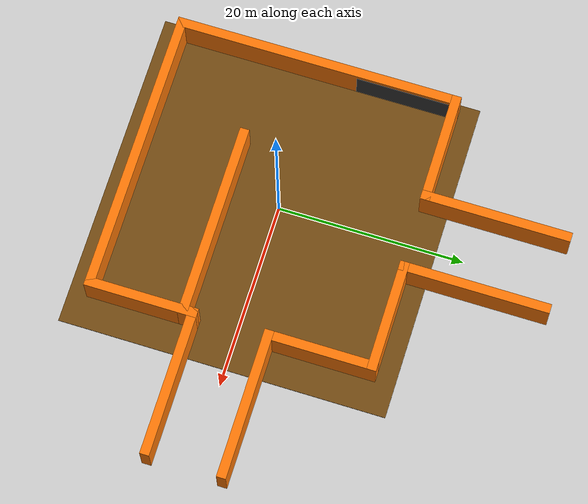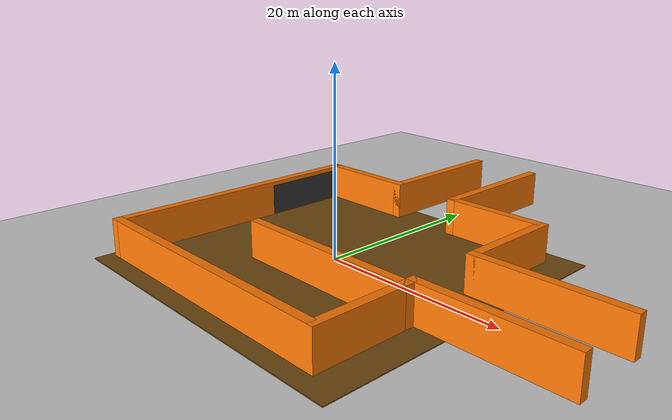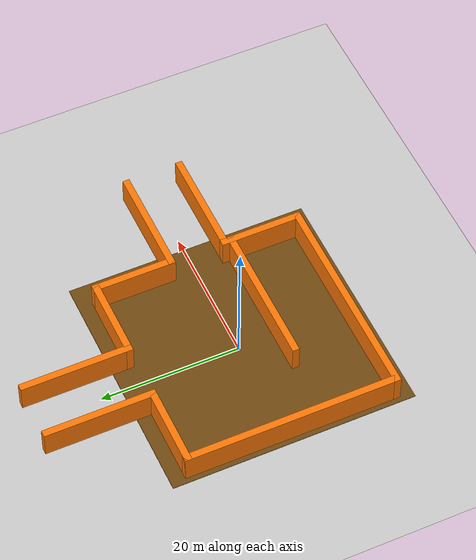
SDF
<sdf version='1.7'>
  <world name='default'>
    <plugin filename="ignition-gazebo-physics-system" name="ignition::gazebo::systems::Physics"/>
    <plugin filename="ignition-gazebo-user-commands-system" name="ignition::gazebo::systems::UserCommands"/>
    <plugin filename="ignition-gazebo-scene-broadcaster-system" name="ignition::gazebo::systems::SceneBroadcaster"/>
    <plugin filename="ignition-gazebo-sensors-system" name="ignition::gazebo::systems::Sensors">
      <render_engine>ogre2</render_engine>
    </plugin>

    <light name='sun' type='directional'>
      <cast_shadows>1</cast_shadows>
      <pose>0 0 10 0 -0 0</pose>
      <diffuse>0.8 0.8 0.8 1</diffuse>
      <specular>0.2 0.2 0.2 1</specular>
      <attenuation>
        <range>1000</range>
        <constant>0.9</constant>
        <linear>0.01</linear>
        <quadratic>0.001</quadratic>
      </attenuation>
      <direction>-0.5 0.1 -0.9</direction>
    </light>

    <model name='ground_plane'>
      <static>1</static>
      <link name='link'>
        <collision name='collision'>
          <geometry>
            <plane>
              <normal>0 0 1</normal>
              <size>100 100</size>
            </plane>
          </geometry>
        </collision>
        <visual name='visual'>
          <geometry>
            <plane>
              <normal>0 0 1</normal>
              <size>100 100</size>
            </plane>
          </geometry>
          <material>
            <ambient>0.8 0.8 0.8 1</ambient>
            <diffuse>0.8 0.8 0.8 1</diffuse>
            <specular>0.8 0.8 0.8 1</specular>
          </material>
        </visual>
      </link>
    </model>

    <gravity>0 0 -9.8</gravity>

    <model name='asphalt_plane'>
      <static>1</static>
      <link name='link'>
        <collision name='collision'>
          <geometry>
            <box>
              <size>35 35 0.1</size>
            </box>
          </geometry>
        </collision>
        <visual name='visual'>
          <geometry>
            <box>
              <size>35 35 0.1</size>
            </box>
          </geometry>
          <material>
            <ambient>0.45 0.29 0.07 1</ambient>
            <diffuse>0.45 0.29 0.07 1</diffuse>
          </material>
        </visual>
      </link>
      <pose>0.794985 -0.443467 0.05 0 -0 0</pose>
    </model>

    <model name='Untitled'>
      <static>1</static>
      <pose>7 7 0.1 0 -0 0</pose>

      <link name='Wall_0'>
        <collision name='Wall_0_Collision'>
          <geometry><box><size>12 1 4</size></box></geometry>
          <pose>0 0 2 0 -0 0</pose>
        </collision>
        <visual name='Wall_0_Visual'>
          <pose>0 0 2 0 -0 0</pose>
          <geometry><box><size>12 1 4</size></box></geometry>
          <material>
            <ambient>0.99 0.47 0.02 1</ambient>
            <diffuse>0.99 0.47 0.02 1</diffuse>
          </material>
        </visual>
        <pose>-17 7.5 0 0 -0 0</pose>
      </link>

      <link name='Wall_12'>
        <collision name='Wall_12_Collision'>
          <geometry><box><size>12 1 4</size></box></geometry>
          <pose>0 0 2 0 -0 0</pose>
        </collision>
        <visual name='Wall_12_Visual'>
          <pose>0 0 2 0 -0 0</pose>
          <geometry><box><size>12 1 4</size></box></geometry>
          <material><ambient>0.99 0.47 0.02 1</ambient><diffuse>0.99 0.47 0.02 1</diffuse></material>
        </visual>
        <pose>7.5 -17 0 0 -0 1.5708</pose>
      </link>

      <link name='Wall_14'>
        <collision name='Wall_14_Collision'>
          <geometry><box><size>16 1 4</size></box></geometry>
          <pose>0 0 2 0 -0 0</pose>
        </collision>
        <visual name='Wall_14_Visual'>
          <pose>0 0 2 0 -0 0</pose>
          <geometry><box><size>16 1 4</size></box></geometry>
          <material><ambient>0.99 0.47 0.02 1</ambient><diffuse>0.99 0.47 0.02 1</diffuse></material>
        </visual>
        <pose>15 -3.5 0 0 -0 0</pose>
      </link>

      <link name='Wall_16'>
        <collision name='Wall_16_Collision'>
          <geometry><box><size>16 1 4</size></box></geometry>
          <pose>0 0 2 0 -0 0</pose>
        </collision>
        <visual name='Wall_16_Visual'>
          <pose>0 0 2 0 -0 0</pose>
          <geometry><box><size>16 1 4</size></box></geometry>
          <material><ambient>0.99 0.47 0.02 1</ambient><diffuse>0.99 0.47 0.02 1</diffuse></material>
        </visual>
        <pose>15 -11.5 0 0 -0 0</pose>
      </link>

      <link name='Wall_18'>
        <collision name='Wall_18_Collision'>
          <geometry><box><size>16 1 4</size></box></geometry>
          <pose>0 0 2 0 -0 0</pose>
        </collision>
        <visual name='Wall_18_Visual'>
          <pose>0 0 2 0 -0 0</pose>
          <geometry><box><size>16 1 4</size></box></geometry>
          <material><ambient>0.99 0.47 0.02 1</ambient><diffuse>0.99 0.47 0.02 1</diffuse></material>
        </visual>
        <pose>-3.5 15 0 0 -0 1.5708</pose>
      </link>

      <link name='Wall_2'>
        <collision name='Wall_2_Collision'>
          <geometry><box><size>12 1 4</size></box></geometry>
          <pose>0 0 2 0 -0 0</pose>
        </collision>
        <visual name='Wall_2_Visual'>
          <pose>0 0 2 0 -0 0</pose>
          <geometry><box><size>12 1 4</size></box></geometry>
          <material><ambient>0.99 0.47 0.02 1</ambient><diffuse>0.99 0.47 0.02 1</diffuse></material>
        </visual>
        <pose>2 7.5 0 0 -0 3.14159</pose>
      </link>

      <link name='Wall_20'>
        <collision name='Wall_20_Collision'>
          <geometry><box><size>16 1 4</size></box></geometry>
          <pose>0 0 2 0 -0 0</pose>
        </collision>
        <visual name='Wall_20_Visual'>
          <pose>0 0 2 0 -0 0</pose>
          <geometry><box><size>16 1 4</size></box></geometry>
          <material><ambient>0.99 0.47 0.02 1</ambient><diffuse>0.99 0.47 0.02 1</diffuse></material>
        </visual>
        <pose>-11.5 15 0 0 -0 1.5708</pose>
      </link>

      <link name='Wall_22'>
        <collision name='Wall_22_Collision'>
          <geometry><box><size>21 1 4</size></box></geometry>
          <pose>0 0 2 0 -0 0</pose>
        </collision>
        <visual name='Wall_22_Visual'>
          <pose>0 0 2 0 -0 0</pose>
          <geometry><box><size>21 1 4</size></box></geometry>
          <material><ambient>0.99 0.47 0.02 1</ambient><diffuse>0.99 0.47 0.02 1</diffuse></material>
        </visual>
        <pose>-2.5 -12.5 0 0 -0 3.14159</pose>
      </link>

      <link name='Wall_4'>
        <collision name='Wall_4_Collision'>
          <geometry><box><size>31 1 4</size></box></geometry>
          <pose>0 0 2 0 -0 0</pose>
        </collision>
        <visual name='Wall_4_Visual'>
          <pose>0 0 2 0 -0 0</pose>
          <geometry><box><size>31 1 4</size></box></geometry>
          <material><ambient>0.99 0.47 0.02 1</ambient><diffuse>0.99 0.47 0.02 1</diffuse></material>
        </visual>
        <pose>-22.5 -7.5 0 0 -0 1.5708</pose>
      </link>

      <link name='Wall_6'>
        <collision name='Wall_6_Collision'>
          <geometry><box><size>12 1 4</size></box></geometry>
          <pose>0 0 2 0 -0 0</pose>
        </collision>
        <visual name='Wall_6_Visual'>
          <pose>0 0 2 0 -0 0</pose>
          <geometry><box><size>12 1 4</size></box></geometry>
          <material><ambient>0.99 0.47 0.02 1</ambient><diffuse>0.99 0.47 0.02 1</diffuse></material>
        </visual>
        <pose>7.5 2 0 0 -0 -1.5708</pose>
      </link>

      <link name='Wall_8'>
        <collision name='Wall_8_Collision'>
          <geometry><box><size>31 1 4</size></box></geometry>
          <pose>0 0 2 0 -0 0</pose>
        </collision>
        <visual name='Wall_8_Visual'>
          <pose>0 0 2 0 -0 0</pose>
          <geometry><box><size>31 1 4</size></box></geometry>
          <material><ambient>0.99 0.47 0.02 1</ambient><diffuse>0.99 0.47 0.02 1</diffuse></material>
        </visual>
        <pose>-7.5 -22.5 0 0 -0 3.14159</pose>
      </link>
    </model>

    <model name='bookshelf'>
      <static>1</static>
      <pose>-14.223 8.9 0.15 0 -0 1.5708</pose>
      <link name='link'>
        <visual name='visual_back'>
          <pose>0 0.75 1.75 0 -0 0</pose>
          <geometry><box><size>10 0.02 3.5</size></box></geometry>
          <material><ambient>0.15 0.15 0.15 1</ambient><diffuse>0.2 0.2 0.2 1</diffuse></material>
        </visual>
        </link>
    </model>

    <model name='bookshelf_0'>
      <static>1</static>
      <pose>-14.223 -1.2 0.15 0 -0 1.5708</pose>
      <link name='link'>
        </link>
    </model>

    <scene>
      <ambient>0.4 0.4 0.4 1</ambient>
      <background>0.7 0.7 0.7 1</background>
      <shadows>1</shadows>
    </scene>

  </world>
</sdf>
